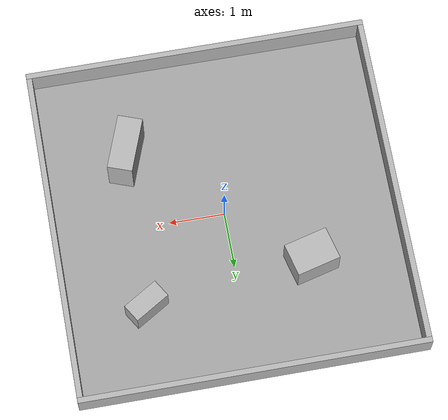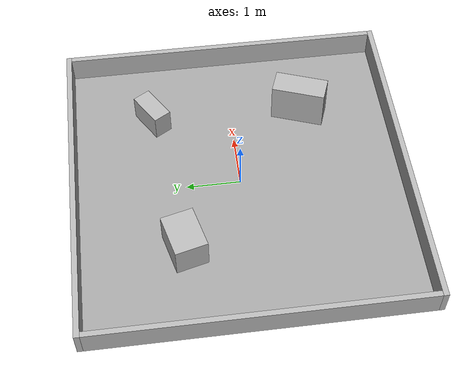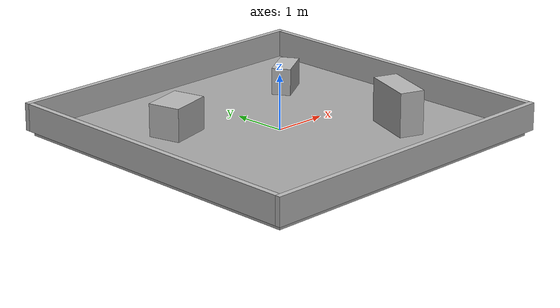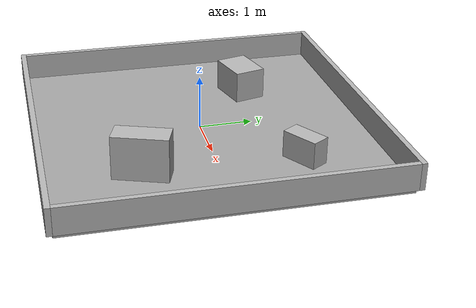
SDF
<?xml version="1.0"?>
<sdf version="1.9">
  <world name="p0_room">
    <gravity>0 0 -9.81</gravity>
    <physics name="p0_physics" type="ignored">
      <max_step_size>0.001</max_step_size>
      <real_time_factor>1.0</real_time_factor>
    </physics>

    <plugin filename="gz-sim-physics-system" name="gz::sim::systems::Physics"/>
    <plugin filename="gz-sim-user-commands-system" name="gz::sim::systems::UserCommands"/>
    <plugin filename="gz-sim-scene-broadcaster-system" name="gz::sim::systems::SceneBroadcaster"/>
    <plugin filename="gz-sim-sensors-system" name="gz::sim::systems::Sensors">
      <render_engine>ogre2</render_engine>
    </plugin>
    <plugin filename="gz-sim-imu-system" name="gz::sim::systems::Imu"/>

    <scene>
      <ambient>0.45 0.45 0.45 1</ambient>
      <background>0.75 0.82 0.90 1</background>
      <shadows>true</shadows>
    </scene>

    <light name="sun" type="directional">
      <cast_shadows>true</cast_shadows>
      <pose>0 0 5 0 0 0</pose>
      <diffuse>0.9 0.9 0.9 1</diffuse>
      <specular>0.2 0.2 0.2 1</specular>
      <attenuation>
        <range>1000</range>
        <constant>0.9</constant>
        <linear>0.01</linear>
        <quadratic>0.001</quadratic>
      </attenuation>
      <direction>-0.4 0.2 -0.9</direction>
    </light>

    <model name="floor">
      <static>true</static>
      <link name="floor_link">
        <collision name="collision">
          <geometry>
            <box><size>6 6 0.10</size></box>
          </geometry>
        </collision>
        <visual name="visual">
          <geometry>
            <box><size>6 6 0.10</size></box>
          </geometry>
          <material>
            <ambient>0.55 0.55 0.55 1</ambient>
            <diffuse>0.65 0.65 0.65 1</diffuse>
          </material>
        </visual>
      </link>
      <pose>0 0 -0.05 0 0 0</pose>
    </model>

    <!-- Four 500 mm-high walls around the 6 x 6 m test area. -->
    <model name="wall_north">
      <static>true</static>
      <pose>0 3.05 0.25 0 0 0</pose>
      <link name="link">
        <collision name="collision"><geometry><box><size>6.2 0.1 0.5</size></box></geometry></collision>
        <visual name="visual"><geometry><box><size>6.2 0.1 0.5</size></box></geometry></visual>
      </link>
    </model>
    <model name="wall_south">
      <static>true</static>
      <pose>0 -3.05 0.25 0 0 0</pose>
      <link name="link">
        <collision name="collision"><geometry><box><size>6.2 0.1 0.5</size></box></geometry></collision>
        <visual name="visual"><geometry><box><size>6.2 0.1 0.5</size></box></geometry></visual>
      </link>
    </model>
    <model name="wall_east">
      <static>true</static>
      <pose>3.05 0 0.25 0 0 0</pose>
      <link name="link">
        <collision name="collision"><geometry><box><size>0.1 6.0 0.5</size></box></geometry></collision>
        <visual name="visual"><geometry><box><size>0.1 6.0 0.5</size></box></geometry></visual>
      </link>
    </model>
    <model name="wall_west">
      <static>true</static>
      <pose>-3.05 0 0.25 0 0 0</pose>
      <link name="link">
        <collision name="collision"><geometry><box><size>0.1 6.0 0.5</size></box></geometry></collision>
        <visual name="visual"><geometry><box><size>0.1 6.0 0.5</size></box></geometry></visual>
      </link>
    </model>

    <model name="box_1">
      <static>true</static>
      <pose>-1.35 1.15 0.30 0 0 0.25</pose>
      <link name="link">
        <collision name="collision"><geometry><box><size>0.8 0.6 0.6</size></box></geometry></collision>
        <visual name="visual"><geometry><box><size>0.8 0.6 0.6</size></box></geometry></visual>
      </link>
    </model>
    <model name="box_2">
      <static>true</static>
      <pose>1.55 -1.35 0.40 0 0 -0.35</pose>
      <link name="link">
        <collision name="collision"><geometry><box><size>0.45 1.0 0.8</size></box></geometry></collision>
        <visual name="visual"><geometry><box><size>0.45 1.0 0.8</size></box></geometry></visual>
      </link>
    </model>
    <model name="box_3">
      <static>true</static>
      <pose>1.65 1.50 0.25 0 0 0.55</pose>
      <link name="link">
        <collision name="collision"><geometry><box><size>0.7 0.35 0.5</size></box></geometry></collision>
        <visual name="visual"><geometry><box><size>0.7 0.35 0.5</size></box></geometry></visual>
      </link>
    </model>
  </world>
</sdf>
